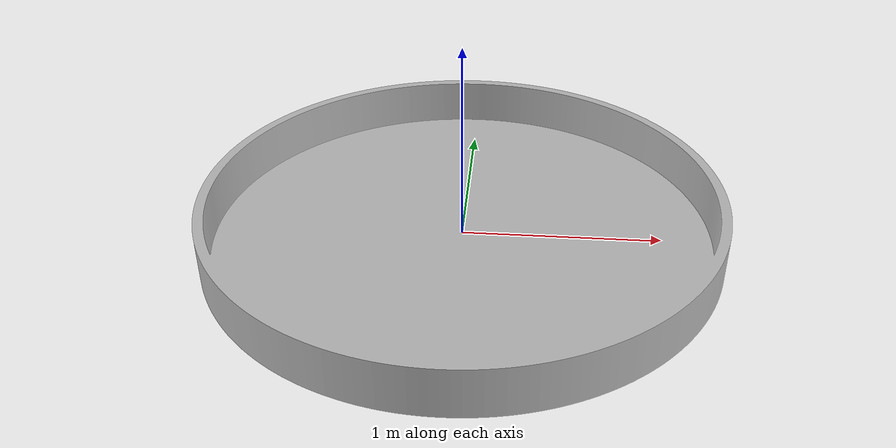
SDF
<?xml version="1.0" ?>
<sdf version="1.6">
 <world name="default">

    <!-- LIGHT -->
    <light name="sun" type="directional">
      <pose>0 0 10 0 0 0</pose>
      <diffuse>1 1 1 1</diffuse>
      <direction>-0.5 0.1 -1</direction>
    </light>

    <gravity>0 0 -9.8</gravity>

  <model name="clean_world">
    <static>true</static>

    <link name="clean_world">

      <!-- Visual -->
      <visual name="visual">
        <geometry>
          <mesh>
            <uri>file:///home/sam/amr-simulation/ros2_ws/src/amr_description/worlds/clean_world/meshes/clean_world.obj</uri>
          </mesh>
        </geometry>
      </visual>

      <!-- Collision -->
      <collision name="collision">
        <geometry>
          <mesh>
            <uri>file:///home/sam/amr-simulation/ros2_ws/src/amr_description/worlds/clean_world/meshes/clean_world.obj</uri>
          </mesh>
        </geometry>
      </collision>

    </link>
  </model>

 </world>
</sdf>
